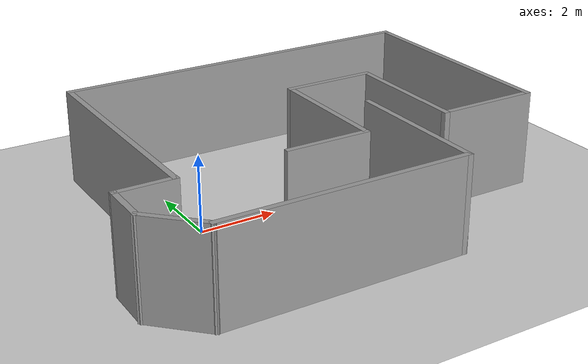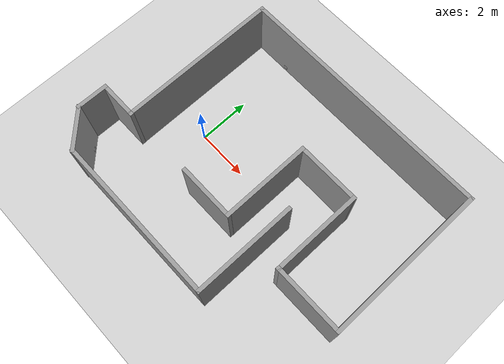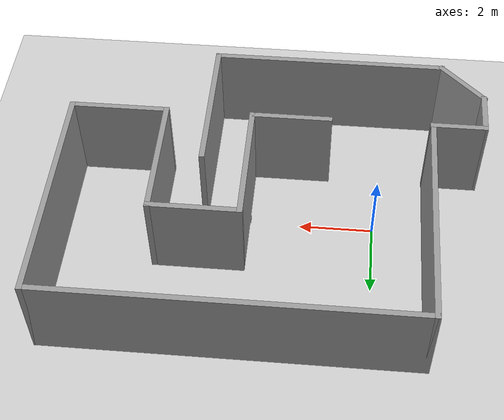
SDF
<sdf version="1.7">
 <world name="default">
  <light name="sun" type="directional">
   <pose>0 0 10 0 -0 0</pose>
   <diffuse>0.8 0.8 0.8 1</diffuse>
   <specular>0.2 0.2 0.2 1</specular>
   <attenuation>
    <range>1000</range>
    <constant>0.9</constant>
    <linear>0.01</linear>
    <quadratic>0.001</quadratic>
   </attenuation>
   <direction>-0.5 0.1 -0.9</direction>
   <spot><inner_angle>0</inner_angle><outer_angle>0</outer_angle><falloff>0</falloff></spot>
  </light>
  <model name="ground_plane">
   <static>1</static>
   <link name="link">
    <collision name="collision">
     <geometry><plane><normal>0 0 1</normal><size>100 100</size></plane></geometry>
     <surface><friction><ode><mu>100</mu><mu2>50</mu2></ode></friction></surface>
    </collision>
    <visual name="visual">
     <cast_shadows>0</cast_shadows>
     <geometry><plane><normal>0 0 1</normal><size>100 100</size></plane></geometry>
     <material>
      <script><uri>file://media/materials/scripts/gazebo.material</uri><name>Gazebo/Grey</name></script>
     </material>
    </visual>
   </link>
  </model>
  <gravity>0 0 -9.8</gravity>
  <magnetic_field>6e-06 2.3e-05 -4.2e-05</magnetic_field>
  <atmosphere type="adiabatic"/>
  <physics type="ode">
   <max_step_size>0.001</max_step_size>
   <real_time_factor>1</real_time_factor>
   <real_time_update_rate>1000</real_time_update_rate>
  </physics>
  <scene><ambient>0.4 0.4 0.4 1</ambient><background>0.7 0.7 0.7 1</background><shadows>1</shadows></scene>
  <audio><device>default</device></audio>
  <spherical_coordinates>
   <surface_model>EARTH_WGS84</surface_model>
   <latitude_deg>0</latitude_deg>
   <longitude_deg>0</longitude_deg>
   <elevation>0</elevation>
   <heading_deg>0</heading_deg>
  </spherical_coordinates>
  <model name="wall001">
   <pose>3.47987 1.24582 0 0 -0 0</pose>
   <link name="Wall_10">
    <collision name="Wall_10_Collision">
     <geometry><box><size>6.25 0.15 2.5</size></box></geometry>
     <pose>0 0 1.25 0 -0 0</pose>
    </collision>
    <visual name="Wall_10_Visual">
     <pose>0 0 1.25 0 -0 0</pose>
     <geometry><box><size>6.25 0.15 2.5</size></box></geometry>
     <material>
      <script><uri>file://media/materials/scripts/gazebo.material</uri><name>Gazebo/Grey</name></script>
      <ambient>1 1 1 1</ambient>
     </material>
     <meta><layer>0</layer></meta>
    </visual>
    <pose>4.925 0 0 0 -0 -1.5708</pose>
   </link>
   <link name="Wall_11">
    <collision name="Wall_11_Collision">
     <geometry><box><size>2.75 0.15 2.5</size></box></geometry>
     <pose>0 0 1.25 0 -0 0</pose>
    </collision>
    <visual name="Wall_11_Visual">
     <pose>0 0 1.25 0 -0 0</pose>
     <geometry><box><size>2.75 0.15 2.5</size></box></geometry>
     <material>
      <script><uri>file://media/materials/scripts/gazebo.material</uri><name>Gazebo/Grey</name></script>
      <ambient>1 1 1 1</ambient>
     </material>
     <meta><layer>0</layer></meta>
    </visual>
    <pose>3.625 -3.05 0 0 -0 3.14159</pose>
   </link>
   <link name="Wall_12">
    <collision name="Wall_12_Collision">
     <geometry><box><size>3.5 0.15 2.5</size></box></geometry>
     <pose>0 0 1.25 0 -0 0</pose>
    </collision>
    <visual name="Wall_12_Visual">
     <pose>0 0 1.25 0 -0 0</pose>
     <geometry><box><size>3.5 0.15 2.5</size></box></geometry>
     <material>
      <script><uri>file://media/materials/scripts/gazebo.material</uri><name>Gazebo/Grey</name></script>
      <ambient>1 1 1 1</ambient>
     </material>
     <meta><layer>0</layer></meta>
    </visual>
    <pose>2.325 -1.375 0 0 -0 1.5708</pose>
   </link>
   <link name="Wall_13">
    <collision name="Wall_13_Collision">
     <geometry><box><size>2.5 0.15 2.5</size></box></geometry>
     <pose>0 0 1.25 0 -0 0</pose>
    </collision>
    <visual name="Wall_13_Visual">
     <pose>0 0 1.25 0 -0 0</pose>
     <geometry><box><size>2.5 0.15 2.5</size></box></geometry>
     <material>
      <script><uri>file://media/materials/scripts/gazebo.material</uri><name>Gazebo/Grey</name></script>
      <ambient>1 1 1 1</ambient>
     </material>
     <meta><layer>0</layer></meta>
    </visual>
    <pose>1.15 0.3 0 0 -0 3.14159</pose>
   </link>
   <link name="Wall_14">
    <collision name="Wall_14_Collision">
     <geometry><box><size>3.5 0.15 2.5</size></box></geometry>
     <pose>0 0 1.25 0 -0 0</pose>
    </collision>
    <visual name="Wall_14_Visual">
     <pose>0 0 1.25 0 -0 0</pose>
     <geometry><box><size>3.5 0.15 2.5</size></box></geometry>
     <material>
      <script><uri>file://media/materials/scripts/gazebo.material</uri><name>Gazebo/Grey</name></script>
      <ambient>1 1 1 1</ambient>
     </material>
     <meta><layer>0</layer></meta>
    </visual>
    <pose>-0.025 -1.375 0 0 -0 -1.5708</pose>
   </link>
   <link name="Wall_15">
    <collision name="Wall_15_Collision">
     <geometry><box><size>2.25 0.15 2.5</size></box></geometry>
     <pose>0 0 1.25 0 -0 0</pose>
    </collision>
    <visual name="Wall_15_Visual">
     <pose>0 0 1.25 0 -0 0</pose>
     <geometry><box><size>2.25 0.15 2.5</size></box></geometry>
     <material>
      <script><uri>file://media/materials/scripts/gazebo.material</uri><name>Gazebo/Grey</name></script>
      <ambient>1 1 1 1</ambient>
     </material>
     <meta><layer>0</layer></meta>
    </visual>
    <pose>-1.075 -3.05 0 0 -0 3.14159</pose>
   </link>
   <link name="Wall_2">
    <collision name="Wall_2_Collision">
     <geometry><box><size>6.25 0.15 2.5</size></box></geometry>
     <pose>0 0 1.25 0 -0 0</pose>
    </collision>
    <visual name="Wall_2_Visual">
     <pose>0 0 1.25 0 -0 0</pose>
     <geometry><box><size>6.25 0.15 2.5</size></box></geometry>
     <material>
      <script><uri>file://media/materials/scripts/gazebo.material</uri><name>Gazebo/Grey</name></script>
      <ambient>1 1 1 1</ambient>
     </material>
     <meta><layer>0</layer></meta>
    </visual>
    <pose>-4.925 0 0 0 -0 1.5708</pose>
   </link>
   <link name="Wall_9">
    <collision name="Wall_9_Collision">
     <geometry><box><size>10 0.15 2.5</size></box></geometry>
     <pose>0 0 1.25 0 -0 0</pose>
    </collision>
    <visual name="Wall_9_Visual">
     <pose>0 0 1.25 0 -0 0</pose>
     <geometry><box><size>10 0.15 2.5</size></box></geometry>
     <material>
      <script><uri>file://media/materials/scripts/gazebo.material</uri><name>Gazebo/Grey</name></script>
      <ambient>1 1 1 1</ambient>
     </material>
     <meta><layer>0</layer></meta>
    </visual>
    <pose>0 3.05 0 0 -0 0</pose>
   </link>
   <static>1</static>
  </model>
  <model name="tag1">
   <pose>3.35 0 0.2 3.14159 1.57059 3.14159</pose>
   <link name="link">
    <visual name="visual">
     <geometry><box><size>0.15 0.15 0.01</size></box></geometry>
     <material>
      <script>
       <uri>file://apriltags/material/tag10/script/tag.material</uri>
       <uri>file://apriltags/material/tag10/textures/tag36h11-10.png</uri>
       <name>tag10</name>
      </script>
     </material>
    </visual>
   </link>
   <static>1</static>
  </model>
  <model name="tag2">
   <pose>0 4.22 0.2 3.14159 1.57059 -1.57059</pose>
   <link name="link">
    <visual name="visual">
     <geometry><box><size>0.15 0.15 0.01</size></box></geometry>
     <material>
      <script>
       <uri>file://apriltags/material/tag20/script/tag.material</uri>
       <uri>file://apriltags/material/tag20/textures/tag36h11-20.png</uri>
       <name>tag20</name>
      </script>
     </material>
    </visual>
   </link>
   <static>1</static>
  </model>
  <model name="tag3">
   <pose>-2.34 -3.34 0.2 3.14159 1.57059 0.7853</pose>
   <link name="link">
    <visual name="visual">
     <geometry><box><size>0.15 0.15 0.01</size></box></geometry>
     <material>
      <script>
       <uri>file://apriltags/material/tag30/script/tag.material</uri>
       <uri>file://apriltags/material/tag30/textures/tag36h11-30.png</uri>
       <name>tag30</name>
      </script>
     </material>
    </visual>
   </link>
   <static>1</static>
  </model>
  <model name="room05">
   <pose>0.879488 -2.02252 0 0 -0 0</pose>
   <link name="Wall_1">
    <collision name="Wall_1_Collision">
     <geometry><box><size>1.28004 0.15 2.5</size></box></geometry>
     <pose>0 0 1.25 0 -0 0</pose>
    </collision>
    <visual name="Wall_1_Visual">
     <pose>0 0 1.25 0 -0 0</pose>
     <geometry><box><size>1.28004 0.15 2.5</size></box></geometry>
     <material>
      <script><uri>file://media/materials/scripts/gazebo.material</uri><name>Gazebo/Grey</name></script>
      <ambient>1 1 1 1</ambient>
     </material>
     <meta><layer>0</layer></meta>
    </visual>
    <pose>-3.72015 -0.356282 0 0 -0 -1.57965</pose>
   </link>
   <link name="Wall_2">
    <collision name="Wall_2_Collision">
     <geometry><box><size>1.75 0.15 2.5</size></box></geometry>
     <pose>0 0 1.25 0 -0 0</pose>
    </collision>
    <visual name="Wall_2_Visual">
     <pose>0 0 1.25 0 -0 0</pose>
     <geometry><box><size>1.75 0.15 2.5</size></box></geometry>
     <material>
      <script><uri>file://media/materials/scripts/gazebo.material</uri><name>Gazebo/Grey</name></script>
      <ambient>1 1 1 1</ambient>
     </material>
     <meta><layer>0</layer></meta>
    </visual>
    <pose>-3.15947 -1.48697 0 0 -0 -0.785398</pose>
   </link>
   <link name="Wall_3">
    <collision name="Wall_3_Collision">
     <geometry><box><size>6.5 0.15 2.5</size></box></geometry>
     <pose>0 0 1.25 0 -0 0</pose>
    </collision>
    <visual name="Wall_3_Visual">
     <pose>0 0 1.25 0 -0 0</pose>
     <geometry><box><size>6.5 0.15 2.5</size></box></geometry>
     <material>
      <script><uri>file://media/materials/scripts/gazebo.material</uri><name>Gazebo/Grey</name></script>
      <ambient>1 1 1 1</ambient>
     </material>
     <meta><layer>0</layer></meta>
    </visual>
    <pose>0.581218 -2.05265 0 0 -0 0</pose>
   </link>
   <link name="Wall_4">
    <collision name="Wall_4_Collision">
     <geometry><box><size>4 0.15 2.5</size></box></geometry>
     <pose>0 0 1.25 0 -0 0</pose>
    </collision>
    <visual name="Wall_4_Visual">
     <pose>0 0 1.25 0 -0 0</pose>
     <geometry><box><size>4 0.15 2.5</size></box></geometry>
     <material>
      <script><uri>file://media/materials/scripts/gazebo.material</uri><name>Gazebo/Grey</name></script>
      <ambient>1 1 1 1</ambient>
     </material>
     <meta><layer>0</layer></meta>
    </visual>
    <pose>3.75622 -0.127652 0 0 -0 1.5708</pose>
   </link>
   <link name="Wall_6">
    <collision name="Wall_6_Collision">
     <geometry><box><size>1.55 0.15 2.5</size></box></geometry>
     <pose>0 0 1.25 0 -0 0</pose>
    </collision>
    <visual name="Wall_6_Visual">
     <pose>0 0 1.25 0 -0 0</pose>
     <geometry><box><size>1.55 0.15 2.5</size></box></geometry>
     <material>
      <script><uri>file://media/materials/scripts/gazebo.material</uri><name>Gazebo/Grey</name></script>
      <ambient>1 1 1 1</ambient>
     </material>
     <meta><layer>0</layer></meta>
    </visual>
    <pose>-3.01515 0.208719 0 0 -0 0</pose>
   </link>
   <static>1</static>
  </model>
 </world>
</sdf>
